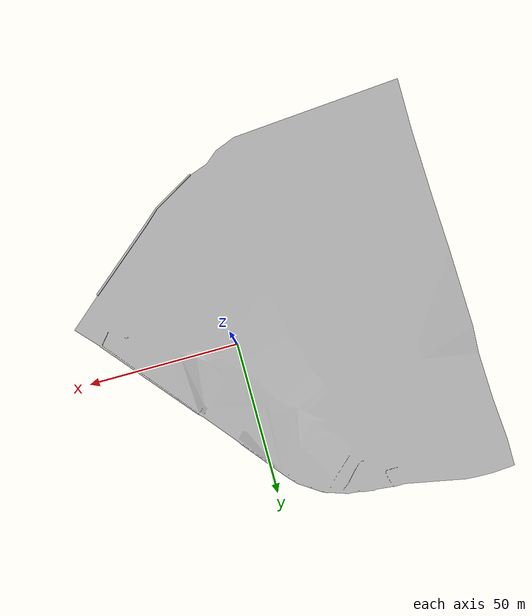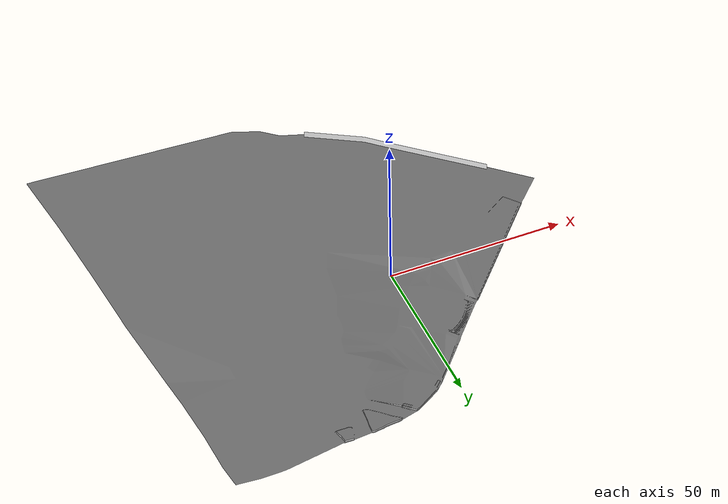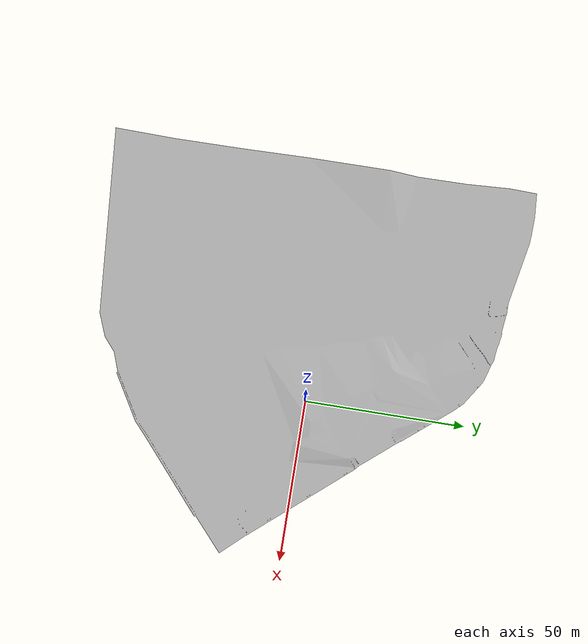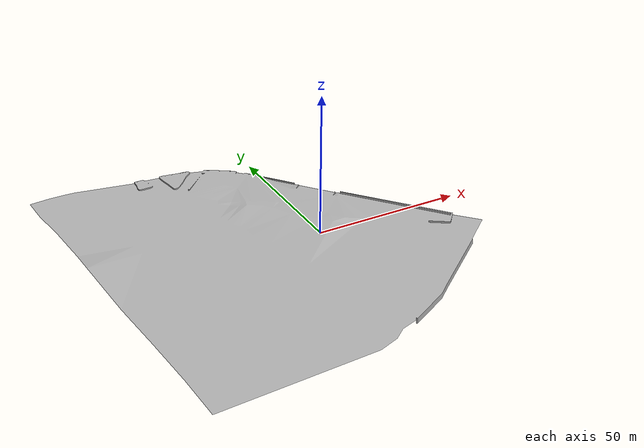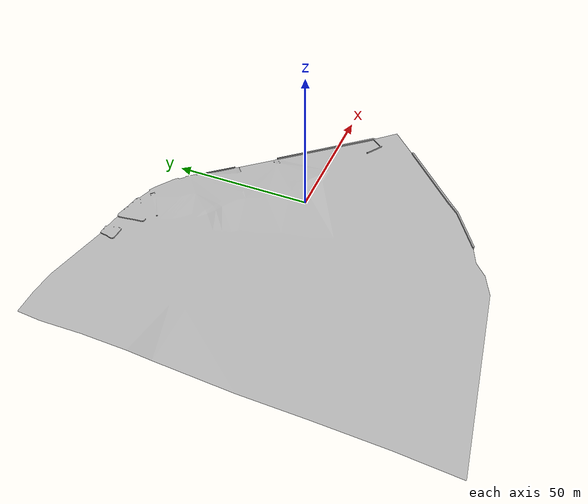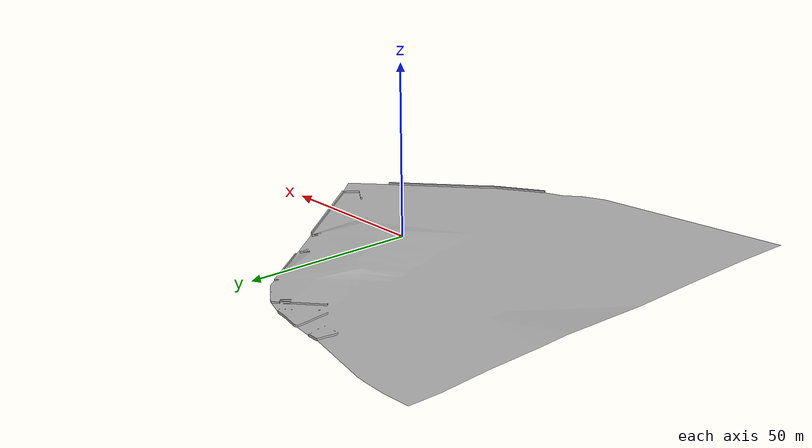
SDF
<?xml version='1.0'?>
<sdf version="1.4">
  <model name="park_map">
    <static>true</static>
    <link name="link">
      <collision name="collision">
        <geometry>
          <mesh>
            <uri>model://park_map/meshes/collision.dae</uri>
          </mesh>
        </geometry>
      </collision>
      <visual name="visual">
        <geometry>
          <mesh>
            <uri>model://park_map/meshes/park.dae</uri>
          </mesh>
        </geometry>
      </visual>
    </link>
  </model>
</sdf>
